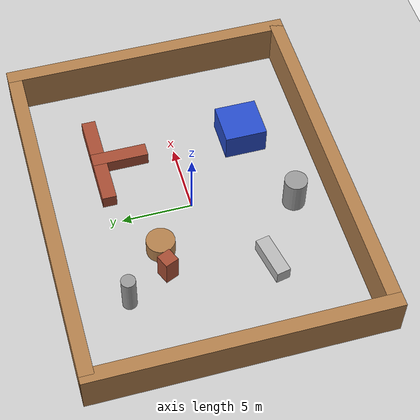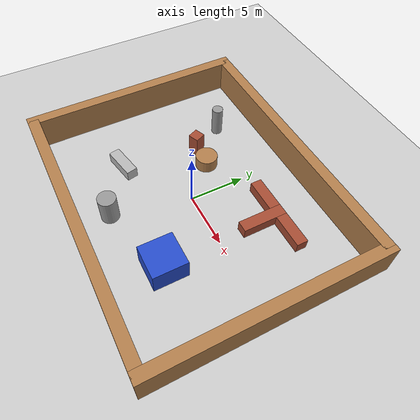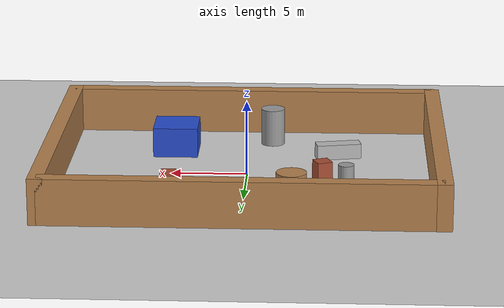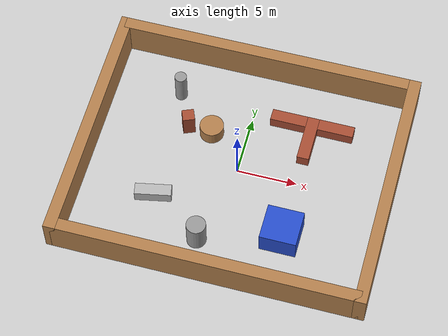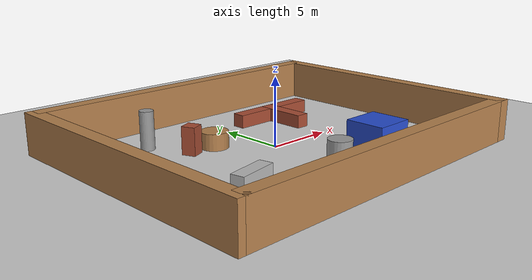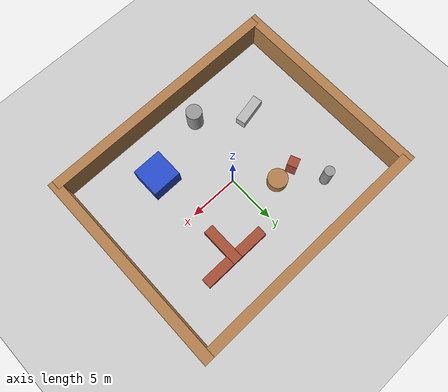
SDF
<sdf version='1.7'>
  <world name='heterogenous_large_arena'>
    <light name='sun' type='directional'>
      <cast_shadows>1</cast_shadows>
      <pose>0 0 10 0 -0 0</pose>
      <diffuse>0.8 0.8 0.8 1</diffuse>
      <specular>0.2 0.2 0.2 1</specular>
      <attenuation>
        <range>1000</range>
        <constant>0.9</constant>
        <linear>0.01</linear>
        <quadratic>0.001</quadratic>
      </attenuation>
      <direction>-0.5 0.1 -0.9</direction>
    </light>

    <model name='ground_plane'>
      <static>1</static>
      <link name='link'>
        <collision name='collision'>
          <geometry>
            <plane>
              <normal>0 0 1</normal>
              <size>35 35</size>
            </plane>
          </geometry>
          <surface>
            <friction>
              <ode>
                <mu>100</mu>
                <mu2>50</mu2>
              </ode>
            </friction>
          </surface>
        </collision>
        <visual name='visual'>
          <cast_shadows>0</cast_shadows>
          <geometry>
            <plane>
              <normal>0 0 1</normal>
              <size>35 35</size>
            </plane>
          </geometry>
          <material>
            <script>
              <uri>file://media/materials/scripts/gazebo.material</uri>
              <name>Gazebo/Grey</name>
            </script>
          </material>
        </visual>
      </link>
    </model>

    <physics type='ode'>
      <max_step_size>0.001</max_step_size>
      <real_time_factor>1</real_time_factor>
      <real_time_update_rate>1000</real_time_update_rate>
    </physics>

    <model name='heterogenous_arena_features'>
      <pose>0 0 0 0 0 0</pose>
      <static>1</static>

      <link name='North_Wall'>
        <pose>0 10.0 1.5 0 0 0</pose>
        <collision name='col'><geometry><box><size>25 1 3</size></box></geometry></collision>
        <visual name='vis'><geometry><box><size>25 1 3</size></box></geometry>
        <material><script><name>Gazebo/Wood</name></script></material></visual>
      </link>
      <link name='South_Wall'>
        <pose>0 -10.0 1.5 0 0 0</pose>
        <collision name='col'><geometry><box><size>25 1 3</size></box></geometry></collision>
        <visual name='vis'><geometry><box><size>25 1 3</size></box></geometry>
        <material><script><name>Gazebo/Wood</name></script></material></visual>
      </link>
      <link name='East_Wall'>
        <pose>12.5 0 1.5 0 0 0</pose>
        <collision name='col'><geometry><box><size>1 21 3</size></box></geometry></collision>
        <visual name='vis'><geometry><box><size>1 21 3</size></box></geometry>
        <material><script><name>Gazebo/Wood</name></script></material></visual>
      </link>
      <link name='West_Wall'>
        <pose>-12.5 0 1.5 0 0 0</pose>
        <collision name='col'><geometry><box><size>1 21 3</size></box></geometry></collision>
        <visual name='vis'><geometry><box><size>1 21 3</size></box></geometry>
        <material><script><name>Gazebo/Wood</name></script></material></visual>
      </link>

      <link name='Pillar_1'>
        <pose>-3 3 0.6 0 0 0</pose>
        <collision name='col'><geometry><cylinder><radius>1</radius><length>1.2</length></cylinder></geometry></collision>
        <visual name='vis'><geometry><cylinder><radius>1</radius><length>1.2</length></cylinder></geometry>
        <material><script><name>Gazebo/Wood</name></script></material></visual>
      </link>

      <link name='Monolith'>
        <pose>5 -5 1 0 0 0</pose>
        <collision name='col'><geometry><box><size>3 3 2</size></box></geometry></collision>
        <visual name='vis'><geometry><box><size>3 3 2</size></box></geometry>
        <material><script><name>Gazebo/Blue</name></script></material></visual>
      </link>

      <link name='Ruin_Left'>
        <pose>-6 -4 0.5 0 0 0.2</pose>
        <collision name='col'><geometry><box><size>3 1 1</size></box></geometry></collision>
        <visual name='vis'><geometry><box><size>3 1 1</size></box></geometry>
        <material><script><name>Gazebo/Rock</name></script></material></visual>
      </link>

      <link name='Scan_Pillar_1'>
        <pose>-6.5 6 1.25 0 0 0</pose>
        <collision name='col'><geometry><cylinder><radius>0.5</radius><length>3</length></cylinder></geometry></collision>
        <visual name='vis'><geometry><cylinder><radius>0.5</radius><length>3</length></cylinder></geometry>
        <material><script><name>Gazebo/Grey</name></script></material></visual>
      </link>

      <link name='Scan_Pillar_2'>
        <pose>-1.5 -7 1.25 0 0 0</pose>
        <collision name='col'><geometry><cylinder><radius>0.8</radius><length>2.5</length></cylinder></geometry></collision>
        <visual name='vis'><geometry><cylinder><radius>0.8</radius><length>2.5</length></cylinder></geometry>
        <material><script><name>Gazebo/Grey</name></script></material></visual>
      </link>

      <link name='Scan_Square_1'>
        <pose>-5 3 1 0 0 0.4</pose>
        <collision name='col'><geometry><box><size>1 1 2</size></box></geometry></collision>
        <visual name='vis'><geometry><box><size>1 1 2</size></box></geometry>
        <material><script><name>Gazebo/Bricks</name></script></material></visual>
      </link>

      <link name='Corner_1_V'>
        <pose>5 4 0.5 0 0 0</pose>
        <collision name='col'><geometry><box><size>1 4 1</size></box></geometry></collision>
        <visual name='vis'><geometry><box><size>1 4 1</size></box></geometry>
        <material><script><name>Gazebo/Bricks</name></script></material></visual>
      </link>
      <link name='Corner_1_H'>
        <pose>3 5.5 0.5 0 0 0</pose>
        <collision name='col'><geometry><box><size>3 1 1</size></box></geometry></collision>
        <visual name='vis'><geometry><box><size>3 1 1</size></box></geometry>
        <material><script><name>Gazebo/Bricks</name></script></material></visual>
      </link>
      <link name='Corner_2_H'>
        <pose>7 5.5 0.5 0 0 0</pose>
        <collision name='col'><geometry><box><size>3 1 1</size></box></geometry></collision>
        <visual name='vis'><geometry><box><size>3 1 1</size></box></geometry>
        <material><script><name>Gazebo/Bricks</name></script></material></visual>
      </link>

    </model>
  </world>
</sdf>
